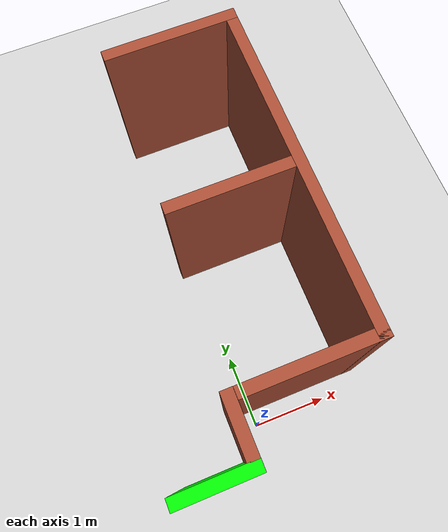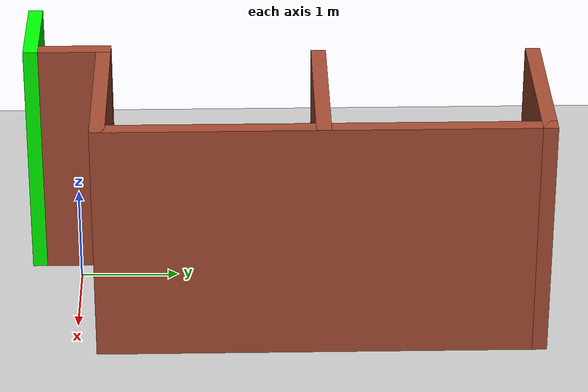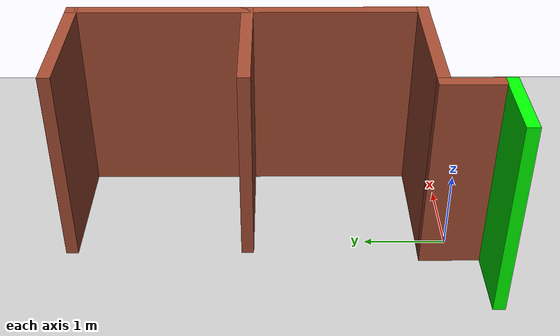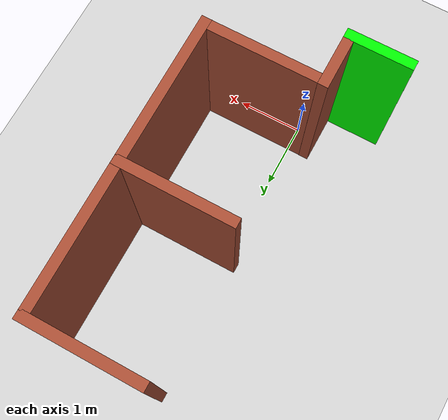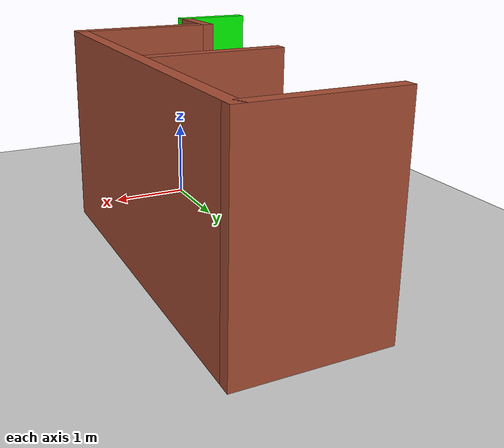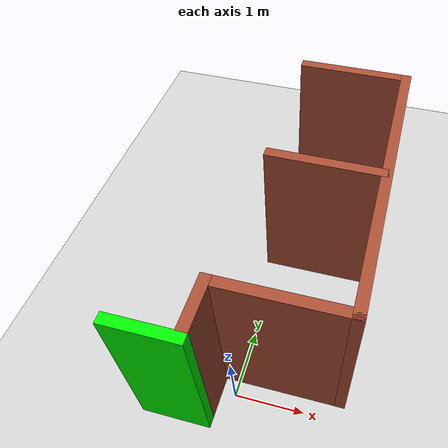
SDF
<sdf version="1.7">
 <world name="default">
  <light name="sun" type="directional">
   <pose>0 0 10 0 -0 0</pose>
   <diffuse>0.8 0.8 0.8 1</diffuse>
   <specular>0.2 0.2 0.2 1</specular>
   <attenuation>
    <range>1000</range>
    <constant>0.9</constant>
    <linear>0.01</linear>
    <quadratic>0.001</quadratic>
   </attenuation>
   <direction>-0.5 0.1 -0.9</direction>
   <spot><inner_angle>0</inner_angle><outer_angle>0</outer_angle><falloff>0</falloff></spot>
  </light>
  <model name="ground_plane">
   <static>1</static>
   <link name="link">
    <collision name="collision">
     <geometry><plane><normal>0 0 1</normal><size>100 100</size></plane></geometry>
     <surface>
      <contact><collide_bitmask>65535</collide_bitmask></contact>
      <friction><ode><mu>100</mu><mu2>50</mu2></ode></friction>
     </surface>
    </collision>
    <visual name="visual">
     <cast_shadows>0</cast_shadows>
     <geometry><plane><normal>0 0 1</normal><size>100 100</size></plane></geometry>
     <material>
      <script><uri>file://media/materials/scripts/gazebo.material</uri><name>Gazebo/Grey</name></script>
     </material>
    </visual>
   </link>
  </model>
  <gravity>0 0 -9.8</gravity>
  <magnetic_field>6e-06 2.3e-05 -4.2e-05</magnetic_field>
  <atmosphere type="adiabatic"/>
  <physics type="ode">
   <max_step_size>0.001</max_step_size>
   <real_time_factor>1</real_time_factor>
   <real_time_update_rate>1000</real_time_update_rate>
  </physics>
  <scene><ambient>0.4 0.4 0.4 1</ambient><background>0.7 0.7 0.7 1</background><shadows>1</shadows></scene>
  <spherical_coordinates>
   <surface_model>EARTH_WGS84</surface_model>
   <latitude_deg>0</latitude_deg>
   <longitude_deg>0</longitude_deg>
   <elevation>0</elevation>
   <heading_deg>0</heading_deg>
  </spherical_coordinates>
  <model name="Untitled">
   <pose>0.175514 2.09282 0 0 -0 0</pose>
   <link name="Wall_0">
    <collision name="Wall_0_Collision">
     <geometry><box><size>4.5 0.15 2.5</size></box></geometry>
     <pose>0 0 1.25 0 -0 0</pose>
    </collision>
    <visual name="Wall_0_Visual">
     <pose>0 0 1.25 0 -0 0</pose>
     <geometry><box><size>4.5 0.15 2.5</size></box></geometry>
     <material>
      <script><uri>file://media/materials/scripts/gazebo.material</uri><name>Gazebo/Bricks</name></script>
      <ambient>1 1 1 1</ambient>
     </material>
     <meta><layer>0</layer></meta>
    </visual>
    <pose>1.2998 0.368977 0 0 -0 1.5708</pose>
   </link>
   <link name="Wall_10">
    <collision name="Wall_10_Collision">
     <geometry><box><size>0.75 0.15 2.5</size></box></geometry>
     <pose>0 0 1.25 0 -0 0</pose>
    </collision>
    <visual name="Wall_10_Visual">
     <pose>0 0 1.25 0 -0 0</pose>
     <geometry><box><size>0.75 0.15 2.5</size></box></geometry>
     <material>
      <script><uri>file://media/materials/scripts/gazebo.material</uri><name>Gazebo/Bricks</name></script>
      <ambient>1 1 1 1</ambient>
     </material>
     <meta><layer>0</layer></meta>
    </visual>
    <pose>-0.451164 -2.10234 0 0 -0 -1.5708</pose>
   </link>
   <link name="Wall_12">
    <collision name="Wall_12_Collision">
     <geometry><box><size>1 0.15 2.5</size></box></geometry>
     <pose>0 0 1.25 0 -0 0</pose>
    </collision>
    <visual name="Wall_12_Visual">
     <pose>0 0 1.25 0 -0 0</pose>
     <geometry><box><size>1 0.15 2.5</size></box></geometry>
     <material>
      <script><uri>file://media/materials/scripts/gazebo.material</uri><name>Gazebo/Grey</name></script>
      <ambient>0 1 0 1</ambient>
     </material>
     <meta><layer>0</layer></meta>
    </visual>
    <pose>-0.875712 -2.54442 0 0 -0 3.14159</pose>
   </link>
   <link name="Wall_2">
    <collision name="Wall_2_Collision">
     <geometry><box><size>1.75 0.15 2.5</size></box></geometry>
     <pose>0 0 1.25 0 -0 0</pose>
    </collision>
    <visual name="Wall_2_Visual">
     <pose>0 0 1.25 0 -0 0</pose>
     <geometry><box><size>1.75 0.15 2.5</size></box></geometry>
     <material>
      <script><uri>file://media/materials/scripts/gazebo.material</uri><name>Gazebo/Bricks</name></script>
      <ambient>1 1 1 1</ambient>
     </material>
     <meta><layer>0</layer></meta>
    </visual>
    <pose>0.499636 -1.80375 0 0 -0 3.14159</pose>
   </link>
   <link name="Wall_4">
    <collision name="Wall_4_Collision">
     <geometry><box><size>1.75 0.15 2.5</size></box></geometry>
     <pose>0 0 1.25 0 -0 0</pose>
    </collision>
    <visual name="Wall_4_Visual">
     <pose>0 0 1.25 0 -0 0</pose>
     <geometry><box><size>1.75 0.15 2.5</size></box></geometry>
     <material>
      <script><uri>file://media/materials/scripts/gazebo.material</uri><name>Gazebo/Bricks</name></script>
      <ambient>1 1 1 1</ambient>
     </material>
     <meta><layer>0</layer></meta>
    </visual>
    <pose>0.497727 0.371376 0 0 -0 0</pose>
   </link>
   <link name="Wall_6">
    <collision name="Wall_6_Collision">
     <geometry><box><size>1.75 0.15 2.5</size></box></geometry>
     <pose>0 0 1.25 0 -0 0</pose>
    </collision>
    <visual name="Wall_6_Visual">
     <pose>0 0 1.25 0 -0 0</pose>
     <geometry><box><size>1.75 0.15 2.5</size></box></geometry>
     <material>
      <script><uri>file://media/materials/scripts/gazebo.material</uri><name>Gazebo/Bricks</name></script>
      <ambient>1 1 1 1</ambient>
     </material>
     <meta><layer>0</layer></meta>
    </visual>
    <pose>0.500712 2.54443 0 0 -0 0</pose>
   </link>
   <static>1</static>
  </model>
 </world>
</sdf>
